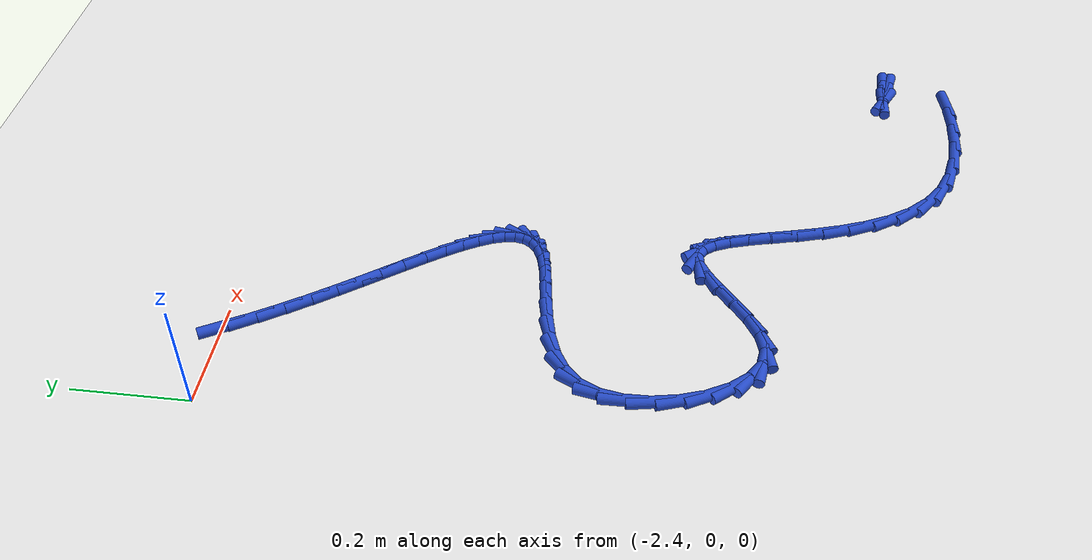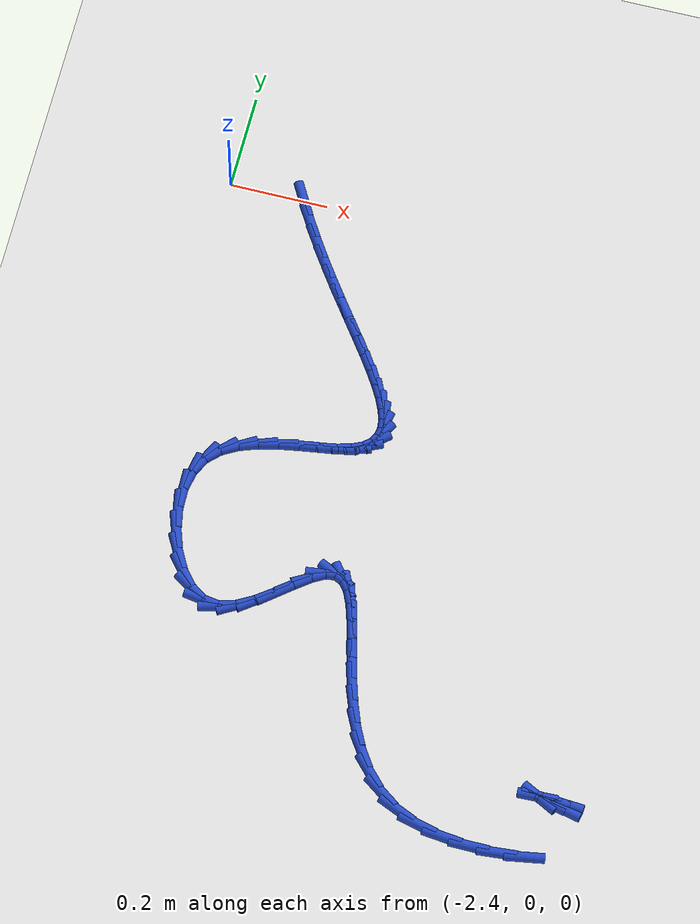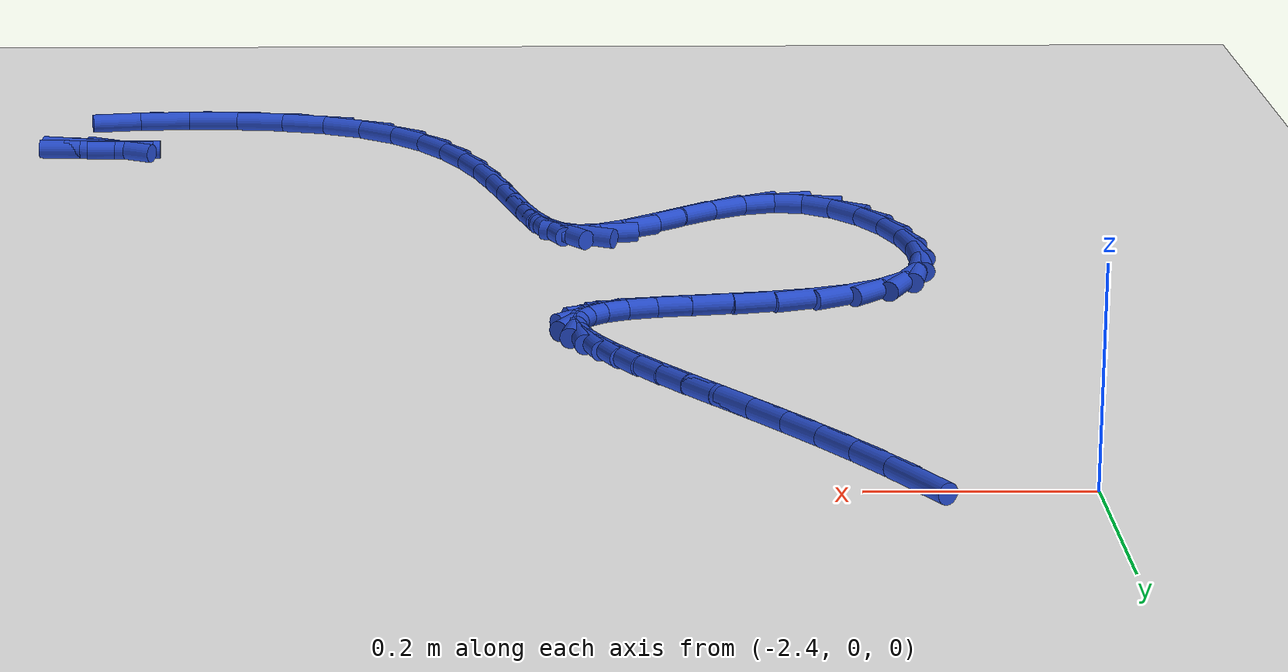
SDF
<sdf version="1.6">
 <world name="default">
  <model name="ground_plane">
   <static>1</static>
   <link name="link">
    <collision name="collision">
     <geometry><plane><normal>0 0 1</normal><size>100 100</size></plane></geometry>
     <surface><friction><ode><mu>100</mu><mu2>50</mu2></ode></friction></surface>
    </collision>
    <visual name="visual">
     <cast_shadows>0</cast_shadows>
     <geometry><plane><normal>0 0 1</normal><size>100 100</size></plane></geometry>
     <material>
      <script><uri>file://media/materials/scripts/gazebo.material</uri><name>Gazebo/WhiteGlow</name></script>
     </material>
    </visual>
   </link>
  </model>
  <model name="line">
   <link name="link_134">
    <pose>-2.248514616710705 -0.0015625688378222147 0.01 0 1.57 -1.0567125782001658</pose>
    <collision name="collision">
     <geometry><cylinder><radius>0.01</radius><length>0.08</length></cylinder></geometry>
    </collision>
    <visual name="visual">
     <material>
      <script><name>Gazebo/Blue</name><uri>file://media/materials/scripts/gazebo.material</uri></script>
     </material>
     <geometry><cylinder><radius>0.01</radius><length>0.08</length></cylinder></geometry>
    </visual>
   </link>
   <link name="link_135">
    <pose>-2.2241787277430705 -0.044655340909345295 0.01 0 1.57 -1.019539368642635</pose>
    <collision name="collision">
     <geometry><cylinder><radius>0.01</radius><length>0.08</length></cylinder></geometry>
    </collision>
    <visual name="visual">
     <material>
      <script><name>Gazebo/Blue</name><uri>file://media/materials/scripts/gazebo.material</uri></script>
     </material>
     <geometry><cylinder><radius>0.01</radius><length>0.08</length></cylinder></geometry>
    </visual>
   </link>
   <link name="link_136">
    <pose>-2.198538710047378 -0.08635754757290538 0.01 0 1.57 -0.9894771255797511</pose>
    <collision name="collision">
     <geometry><cylinder><radius>0.01</radius><length>0.08</length></cylinder></geometry>
    </collision>
    <visual name="visual">
     <material>
      <script><name>Gazebo/Blue</name><uri>file://media/materials/scripts/gazebo.material</uri></script>
     </material>
     <geometry><cylinder><radius>0.01</radius><length>0.08</length></cylinder></geometry>
    </visual>
   </link>
   <link name="link_137">
    <pose>-2.1720975006532335 -0.12659951745585726 0.01 0 1.57 -0.9663210403039078</pose>
    <collision name="collision">
     <geometry><cylinder><radius>0.01</radius><length>0.08</length></cylinder></geometry>
    </collision>
    <visual name="visual">
     <material>
      <script><name>Gazebo/Blue</name><uri>file://media/materials/scripts/gazebo.material</uri></script>
     </material>
     <geometry><cylinder><radius>0.01</radius><length>0.08</length></cylinder></geometry>
    </visual>
   </link>
   <link name="link_138">
    <pose>-2.145358036590244 -0.16531157918555983 0.01 0 1.57 -0.9500854936903999</pose>
    <collision name="collision">
     <geometry><cylinder><radius>0.01</radius><length>0.08</length></cylinder></geometry>
    </collision>
    <visual name="visual">
     <material>
      <script><name>Gazebo/Blue</name><uri>file://media/materials/scripts/gazebo.material</uri></script>
     </material>
     <geometry><cylinder><radius>0.01</radius><length>0.08</length></cylinder></geometry>
    </visual>
   </link>
   <link name="link_139">
    <pose>-2.118823254888016 -0.2024240613893673 0.01 0 1.57 -0.9410730639093469</pose>
    <collision name="collision">
     <geometry><cylinder><radius>0.01</radius><length>0.08</length></cylinder></geometry>
    </collision>
    <visual name="visual">
     <material>
      <script><name>Gazebo/Blue</name><uri>file://media/materials/scripts/gazebo.material</uri></script>
     </material>
     <geometry><cylinder><radius>0.01</radius><length>0.08</length></cylinder></geometry>
    </visual>
   </link>
   <link name="link_140">
    <pose>-2.0929960925761564 -0.23786729269463744 0.01 0 1.57 -0.9399774387839861</pose>
    <collision name="collision">
     <geometry><cylinder><radius>0.01</radius><length>0.08</length></cylinder></geometry>
    </collision>
    <visual name="visual">
     <material>
      <script><name>Gazebo/Blue</name><uri>file://media/materials/scripts/gazebo.material</uri></script>
     </material>
     <geometry><cylinder><radius>0.01</radius><length>0.08</length></cylinder></geometry>
    </visual>
   </link>
   <link name="link_141">
    <pose>-2.0683794866842695 -0.27157160172872774 0.01 0 1.57 -0.9480505577604148</pose>
    <collision name="collision">
     <geometry><cylinder><radius>0.01</radius><length>0.08</length></cylinder></geometry>
    </collision>
    <visual name="visual">
     <material>
      <script><name>Gazebo/Blue</name><uri>file://media/materials/scripts/gazebo.material</uri></script>
     </material>
     <geometry><cylinder><radius>0.01</radius><length>0.08</length></cylinder></geometry>
    </visual>
   </link>
   <link name="link_142">
    <pose>-2.045476374241964 -0.3034673171189928 0.01 0 1.57 -0.9673858947168987</pose>
    <collision name="collision">
     <geometry><cylinder><radius>0.01</radius><length>0.08</length></cylinder></geometry>
    </collision>
    <visual name="visual">
     <material>
      <script><name>Gazebo/Blue</name><uri>file://media/materials/scripts/gazebo.material</uri></script>
     </material>
     <geometry><cylinder><radius>0.01</radius><length>0.08</length></cylinder></geometry>
    </visual>
   </link>
   <link name="link_143">
    <pose>-2.0247896922788446 -0.3334847674927909 0.01 0 1.57 -1.0014117279501613</pose>
    <collision name="collision">
     <geometry><cylinder><radius>0.01</radius><length>0.08</length></cylinder></geometry>
    </collision>
    <visual name="visual">
     <material>
      <script><name>Gazebo/Blue</name><uri>file://media/materials/scripts/gazebo.material</uri></script>
     </material>
     <geometry><cylinder><radius>0.01</radius><length>0.08</length></cylinder></geometry>
    </visual>
   </link>
   <link name="link_144">
    <pose>-2.006822377824519 -0.36155428147747687 0.01 0 1.57 -1.0557628170503466</pose>
    <collision name="collision">
     <geometry><cylinder><radius>0.01</radius><length>0.08</length></cylinder></geometry>
    </collision>
    <visual name="visual">
     <material>
      <script><name>Gazebo/Blue</name><uri>file://media/materials/scripts/gazebo.material</uri></script>
     </material>
     <geometry><cylinder><radius>0.01</radius><length>0.08</length></cylinder></geometry>
    </visual>
   </link>
   <link name="link_145">
    <pose>-1.9920773679085924 -0.3876061877004091 0.01 0 1.57 -1.1397939830899486</pose>
    <collision name="collision">
     <geometry><cylinder><radius>0.01</radius><length>0.08</length></cylinder></geometry>
    </collision>
    <visual name="visual">
     <material>
      <script><name>Gazebo/Blue</name><uri>file://media/materials/scripts/gazebo.material</uri></script>
     </material>
     <geometry><cylinder><radius>0.01</radius><length>0.08</length></cylinder></geometry>
    </visual>
   </link>
   <link name="link_146">
    <pose>-1.9810575995606723 -0.4115708147889422 0.01 0 1.57 -1.2688855130339405</pose>
    <collision name="collision">
     <geometry><cylinder><radius>0.01</radius><length>0.08</length></cylinder></geometry>
    </collision>
    <visual name="visual">
     <material>
      <script><name>Gazebo/Blue</name><uri>file://media/materials/scripts/gazebo.material</uri></script>
     </material>
     <geometry><cylinder><radius>0.01</radius><length>0.08</length></cylinder></geometry>
    </visual>
   </link>
   <link name="link_147">
    <pose>-1.9742660098103644 -0.4333784913704345 0.01 0 1.57 -1.4659542164103483</pose>
    <collision name="collision">
     <geometry><cylinder><radius>0.01</radius><length>0.08</length></cylinder></geometry>
    </collision>
    <visual name="visual">
     <material>
      <script><name>Gazebo/Blue</name><uri>file://media/materials/scripts/gazebo.material</uri></script>
     </material>
     <geometry><cylinder><radius>0.01</radius><length>0.08</length></cylinder></geometry>
    </visual>
   </link>
   <link name="link_148">
    <pose>-1.972205535687275 -0.4529595460722409 0.01 0 1.57 1.3892131779746963</pose>
    <collision name="collision">
     <geometry><cylinder><radius>0.01</radius><length>0.08</length></cylinder></geometry>
    </collision>
    <visual name="visual">
     <material>
      <script><name>Gazebo/Blue</name><uri>file://media/materials/scripts/gazebo.material</uri></script>
     </material>
     <geometry><cylinder><radius>0.01</radius><length>0.08</length></cylinder></geometry>
    </visual>
   </link>
   <link name="link_149">
    <pose>-1.975379114221011 -0.4702443075217195 0.01 0 1.57 1.0323856862845338</pose>
    <collision name="collision">
     <geometry><cylinder><radius>0.01</radius><length>0.08</length></cylinder></geometry>
    </collision>
    <visual name="visual">
     <material>
      <script><name>Gazebo/Blue</name><uri>file://media/materials/scripts/gazebo.material</uri></script>
     </material>
     <geometry><cylinder><radius>0.01</radius><length>0.08</length></cylinder></geometry>
    </visual>
   </link>
   <link name="link_150">
    <pose>-1.9842896824411782 -0.48516310434622534 0.01 0 1.57 0.6891714373673185</pose>
    <collision name="collision">
     <geometry><cylinder><radius>0.01</radius><length>0.08</length></cylinder></geometry>
    </collision>
    <visual name="visual">
     <material>
      <script><name>Gazebo/Blue</name><uri>file://media/materials/scripts/gazebo.material</uri></script>
     </material>
     <geometry><cylinder><radius>0.01</radius><length>0.08</length></cylinder></geometry>
    </visual>
   </link>
   <link name="link_151">
    <pose>-1.999440177377383 -0.4976462651731159 0.01 0 1.57 0.4276236347425826</pose>
    <collision name="collision">
     <geometry><cylinder><radius>0.01</radius><length>0.08</length></cylinder></geometry>
    </collision>
    <visual name="visual">
     <material>
      <script><name>Gazebo/Blue</name><uri>file://media/materials/scripts/gazebo.material</uri></script>
     </material>
     <geometry><cylinder><radius>0.01</radius><length>0.08</length></cylinder></geometry>
    </visual>
   </link>
   <link name="link_152">
    <pose>-2.0213335360592333 -0.507624118629748 0.01 0 1.57 0.2536079970648927</pose>
    <collision name="collision">
     <geometry><cylinder><radius>0.01</radius><length>0.08</length></cylinder></geometry>
    </collision>
    <visual name="visual">
     <material>
      <script><name>Gazebo/Blue</name><uri>file://media/materials/scripts/gazebo.material</uri></script>
     </material>
     <geometry><cylinder><radius>0.01</radius><length>0.08</length></cylinder></geometry>
    </visual>
   </link>
   <link name="link_153">
    <pose>-2.050287747927241 -0.5151287236996018 0.01 0 1.57 0.16937527421216994</pose>
    <collision name="collision">
     <geometry><cylinder><radius>0.01</radius><length>0.08</length></cylinder></geometry>
    </collision>
    <visual name="visual">
     <material>
      <script><name>Gazebo/Blue</name><uri>file://media/materials/scripts/gazebo.material</uri></script>
     </material>
     <geometry><cylinder><radius>0.01</radius><length>0.08</length></cylinder></geometry>
    </visual>
   </link>
   <link name="link_154">
    <pose>-2.085025885135959 -0.521069423056567 0.01 0 1.57 0.14812360153470797</pose>
    <collision name="collision">
     <geometry><cylinder><radius>0.01</radius><length>0.08</length></cylinder></geometry>
    </collision>
    <visual name="visual">
     <material>
      <script><name>Gazebo/Blue</name><uri>file://media/materials/scripts/gazebo.material</uri></script>
     </material>
     <geometry><cylinder><radius>0.01</radius><length>0.08</length></cylinder></geometry>
    </visual>
   </link>
   <link name="link_155">
    <pose>-2.123456043500462 -0.5268038368225098 0.01 0 1.57 0.17046125572489776</pose>
    <collision name="collision">
     <geometry><cylinder><radius>0.01</radius><length>0.08</length></cylinder></geometry>
    </collision>
    <visual name="visual">
     <material>
      <script><name>Gazebo/Blue</name><uri>file://media/materials/scripts/gazebo.material</uri></script>
     </material>
     <geometry><cylinder><radius>0.01</radius><length>0.08</length></cylinder></geometry>
    </visual>
   </link>
   <link name="link_156">
    <pose>-2.1634797673994903 -0.5336931887345436 0.01 0 1.57 0.23365380089577656</pose>
    <collision name="collision">
     <geometry><cylinder><radius>0.01</radius><length>0.08</length></cylinder></geometry>
    </collision>
    <visual name="visual">
     <material>
      <script><name>Gazebo/Blue</name><uri>file://media/materials/scripts/gazebo.material</uri></script>
     </material>
     <geometry><cylinder><radius>0.01</radius><length>0.08</length></cylinder></geometry>
    </visual>
   </link>
   <link name="link_157">
    <pose>-2.202998601211778 -0.5430987025297814 0.01 0 1.57 0.34539546717330427</pose>
    <collision name="collision">
     <geometry><cylinder><radius>0.01</radius><length>0.08</length></cylinder></geometry>
    </collision>
    <visual name="visual">
     <material>
      <script><name>Gazebo/Blue</name><uri>file://media/materials/scripts/gazebo.material</uri></script>
     </material>
     <geometry><cylinder><radius>0.01</radius><length>0.08</length></cylinder></geometry>
    </visual>
   </link>
   <link name="link_158">
    <pose>-2.239914089316068 -0.5563816019453377 0.01 0 1.57 0.5218025250363831</pose>
    <collision name="collision">
     <geometry><cylinder><radius>0.01</radius><length>0.08</length></cylinder></geometry>
    </collision>
    <visual name="visual">
     <material>
      <script><name>Gazebo/Blue</name><uri>file://media/materials/scripts/gazebo.material</uri></script>
     </material>
     <geometry><cylinder><radius>0.01</radius><length>0.08</length></cylinder></geometry>
    </visual>
   </link>
   <link name="link_159">
    <pose>-2.2721277760910943 -0.5749031107183245 0.01 0 1.57 0.7796182875892865</pose>
    <collision name="collision">
     <geometry><cylinder><radius>0.01</radius><length>0.08</length></cylinder></geometry>
    </collision>
    <visual name="visual">
     <material>
      <script><name>Gazebo/Blue</name><uri>file://media/materials/scripts/gazebo.material</uri></script>
     </material>
     <geometry><cylinder><radius>0.01</radius><length>0.08</length></cylinder></geometry>
    </visual>
   </link>
   <link name="link_160">
    <pose>-2.297541205915597 -0.6000244525858554 0.01 0 1.57 1.103806367097789</pose>
    <collision name="collision">
     <geometry><cylinder><radius>0.01</radius><length>0.08</length></cylinder></geometry>
    </collision>
    <visual name="visual">
     <material>
      <script><name>Gazebo/Blue</name><uri>file://media/materials/scripts/gazebo.material</uri></script>
     </material>
     <geometry><cylinder><radius>0.01</radius><length>0.08</length></cylinder></geometry>
    </visual>
   </link>
   <link name="link_161">
    <pose>-2.3141518872285336 -0.6329700638888839 0.01 0 1.57 1.3868467356756191</pose>
    <collision name="collision">
     <geometry><cylinder><radius>0.01</radius><length>0.08</length></cylinder></geometry>
    </collision>
    <visual name="visual">
     <material>
      <script><name>Gazebo/Blue</name><uri>file://media/materials/scripts/gazebo.material</uri></script>
     </material>
     <geometry><cylinder><radius>0.01</radius><length>0.08</length></cylinder></geometry>
    </visual>
   </link>
   <link name="link_162">
    <pose>-2.3215442089694283 -0.6727024377867729 0.01 0 1.57 -1.549298964760823</pose>
    <collision name="collision">
     <geometry><cylinder><radius>0.01</radius><length>0.08</length></cylinder></geometry>
    </collision>
    <visual name="visual">
     <material>
      <script><name>Gazebo/Blue</name><uri>file://media/materials/scripts/gazebo.material</uri></script>
     </material>
     <geometry><cylinder><radius>0.01</radius><length>0.08</length></cylinder></geometry>
    </visual>
   </link>
   <link name="link_163">
    <pose>-2.320606278470118 -0.7163257441895046 0.01 0 1.57 -1.3857560644807116</pose>
    <collision name="collision">
     <geometry><cylinder><radius>0.01</radius><length>0.08</length></cylinder></geometry>
    </collision>
    <visual name="visual">
     <material>
      <script><name>Gazebo/Blue</name><uri>file://media/materials/scripts/gazebo.material</uri></script>
     </material>
     <geometry><cylinder><radius>0.01</radius><length>0.08</length></cylinder></geometry>
    </visual>
   </link>
   <link name="link_164">
    <pose>-2.3122648479889802 -0.760889068438264 0.01 0 1.57 -1.2356961458977977</pose>
    <collision name="collision">
     <geometry><cylinder><radius>0.01</radius><length>0.08</length></cylinder></geometry>
    </collision>
    <visual name="visual">
     <material>
      <script><name>Gazebo/Blue</name><uri>file://media/materials/scripts/gazebo.material</uri></script>
     </material>
     <geometry><cylinder><radius>0.01</radius><length>0.08</length></cylinder></geometry>
    </visual>
   </link>
   <link name="link_165">
    <pose>-2.2974466697843963 -0.8034414958742414 0.01 0 1.57 -1.0742380414158235</pose>
    <collision name="collision">
     <geometry><cylinder><radius>0.01</radius><length>0.08</length></cylinder></geometry>
    </collision>
    <visual name="visual">
     <material>
      <script><name>Gazebo/Blue</name><uri>file://media/materials/scripts/gazebo.material</uri></script>
     </material>
     <geometry><cylinder><radius>0.01</radius><length>0.08</length></cylinder></geometry>
    </visual>
   </link>
   <link name="link_166">
    <pose>-2.2770784961147466 -0.8410321118386225 0.01 0 1.57 -0.8709131242766184</pose>
    <collision name="collision">
     <geometry><cylinder><radius>0.01</radius><length>0.08</length></cylinder></geometry>
    </collision>
    <visual name="visual">
     <material>
      <script><name>Gazebo/Blue</name><uri>file://media/materials/scripts/gazebo.material</uri></script>
     </material>
     <geometry><cylinder><radius>0.01</radius><length>0.08</length></cylinder></geometry>
    </visual>
   </link>
   <link name="link_167">
    <pose>-2.2520870792384087 -0.8707100016725968 0.01 0 1.57 -0.5804592770116315</pose>
    <collision name="collision">
     <geometry><cylinder><radius>0.01</radius><length>0.08</length></cylinder></geometry>
    </collision>
    <visual name="visual">
     <material>
      <script><name>Gazebo/Blue</name><uri>file://media/materials/scripts/gazebo.material</uri></script>
     </material>
     <geometry><cylinder><radius>0.01</radius><length>0.08</length></cylinder></geometry>
    </visual>
   </link>
   <link name="link_168">
    <pose>-2.223399171413764 -0.8895242507173508 0.01 0 1.57 -0.15856803402685657</pose>
    <collision name="collision">
     <geometry><cylinder><radius>0.01</radius><length>0.08</length></cylinder></geometry>
    </collision>
    <visual name="visual">
     <material>
      <script><name>Gazebo/Blue</name><uri>file://media/materials/scripts/gazebo.material</uri></script>
     </material>
     <geometry><cylinder><radius>0.01</radius><length>0.08</length></cylinder></geometry>
    </visual>
   </link>
   <link name="link_169">
    <pose>-2.191942282667306 -0.8945545387850233 0.01 0 1.57 0.26779278558488934</pose>
    <collision name="collision">
     <geometry><cylinder><radius>0.01</radius><length>0.08</length></cylinder></geometry>
    </collision>
    <visual name="visual">
     <material>
      <script><name>Gazebo/Blue</name><uri>file://media/materials/scripts/gazebo.material</uri></script>
     </material>
     <geometry><cylinder><radius>0.01</radius><length>0.08</length></cylinder></geometry>
    </visual>
   </link>
   <link name="link_170">
    <pose>-2.1587072017000413 -0.8854353873751339 0.01 0 1.57 0.5150241635306143</pose>
    <collision name="collision">
     <geometry><cylinder><radius>0.01</radius><length>0.08</length></cylinder></geometry>
    </collision>
    <visual name="visual">
     <material>
      <script><name>Gazebo/Blue</name><uri>file://media/materials/scripts/gazebo.material</uri></script>
     </material>
     <geometry><cylinder><radius>0.01</radius><length>0.08</length></cylinder></geometry>
    </visual>
   </link>
   <link name="link_171">
    <pose>-2.124794699942409 -0.8662418102103258 0.01 0 1.57 0.6365861083162205</pose>
    <collision name="collision">
     <geometry><cylinder><radius>0.01</radius><length>0.08</length></cylinder></geometry>
    </collision>
    <visual name="visual">
     <material>
      <script><name>Gazebo/Blue</name><uri>file://media/materials/scripts/gazebo.material</uri></script>
     </material>
     <geometry><cylinder><radius>0.01</radius><length>0.08</length></cylinder></geometry>
    </visual>
   </link>
   <link name="link_172">
    <pose>-2.091316551784423 -0.8414930594556369 0.01 0 1.57 0.6792891822831562</pose>
    <collision name="collision">
     <geometry><cylinder><radius>0.01</radius><length>0.08</length></cylinder></geometry>
    </collision>
    <visual name="visual">
     <material>
      <script><name>Gazebo/Blue</name><uri>file://media/materials/scripts/gazebo.material</uri></script>
     </material>
     <geometry><cylinder><radius>0.01</radius><length>0.08</length></cylinder></geometry>
    </visual>
   </link>
   <link name="link_173">
    <pose>-2.0593845316160997 -0.8157083872761078 0.01 0 1.57 0.6510173187036401</pose>
    <collision name="collision">
     <geometry><cylinder><radius>0.01</radius><length>0.08</length></cylinder></geometry>
    </collision>
    <visual name="visual">
     <material>
      <script><name>Gazebo/Blue</name><uri>file://media/materials/scripts/gazebo.material</uri></script>
     </material>
     <geometry><cylinder><radius>0.01</radius><length>0.08</length></cylinder></geometry>
    </visual>
   </link>
   <link name="link_174">
    <pose>-2.030110413827449 -0.7934070458367758 0.01 0 1.57 0.510973869948079</pose>
    <collision name="collision">
     <geometry><cylinder><radius>0.01</radius><length>0.08</length></cylinder></geometry>
    </collision>
    <visual name="visual">
     <material>
      <script><name>Gazebo/Blue</name><uri>file://media/materials/scripts/gazebo.material</uri></script>
     </material>
     <geometry><cylinder><radius>0.01</radius><length>0.08</length></cylinder></geometry>
    </visual>
   </link>
   <link name="link_175">
    <pose>-2.004605972808488 -0.7791082873026813 0.01 0 1.57 0.13101453095685123</pose>
    <collision name="collision">
     <geometry><cylinder><radius>0.01</radius><length>0.08</length></cylinder></geometry>
    </collision>
    <visual name="visual">
     <material>
      <script><name>Gazebo/Blue</name><uri>file://media/materials/scripts/gazebo.material</uri></script>
     </material>
     <geometry><cylinder><radius>0.01</radius><length>0.08</length></cylinder></geometry>
    </visual>
   </link>
   <link name="link_176">
    <pose>-1.9836534900198686 -0.7763473927506057 0.01 0 1.57 -0.4565204852414654</pose>
    <collision name="collision">
     <geometry><cylinder><radius>0.01</radius><length>0.08</length></cylinder></geometry>
    </collision>
    <visual name="visual">
     <material>
      <script><name>Gazebo/Blue</name><uri>file://media/materials/scripts/gazebo.material</uri></script>
     </material>
     <geometry><cylinder><radius>0.01</radius><length>0.08</length></cylinder></geometry>
    </visual>
   </link>
   <link name="link_177">
    <pose>-1.9667004212538748 -0.7846734276256563 0.01 0 1.57 -0.913898749266504</pose>
    <collision name="collision">
     <geometry><cylinder><radius>0.01</radius><length>0.08</length></cylinder></geometry>
    </collision>
    <visual name="visual">
     <material>
      <script><name>Gazebo/Blue</name><uri>file://media/materials/scripts/gazebo.material</uri></script>
     </material>
     <geometry><cylinder><radius>0.01</radius><length>0.08</length></cylinder></geometry>
    </visual>
   </link>
   <link name="link_178">
    <pose>-1.9528562486566157 -0.802626160156544 0.01 0 1.57 -1.1520202619252604</pose>
    <collision name="collision">
     <geometry><cylinder><radius>0.01</radius><length>0.08</length></cylinder></geometry>
    </collision>
    <visual name="visual">
     <material>
      <script><name>Gazebo/Blue</name><uri>file://media/materials/scripts/gazebo.material</uri></script>
     </material>
     <geometry><cylinder><radius>0.01</radius><length>0.08</length></cylinder></geometry>
    </visual>
   </link>
   <link name="link_179">
    <pose>-1.941230454348846 -0.8287453584962537 0.01 0 1.57 -1.2668020698687288</pose>
    <collision name="collision">
     <geometry><cylinder><radius>0.01</radius><length>0.08</length></cylinder></geometry>
    </collision>
    <visual name="visual">
     <material>
      <script><name>Gazebo/Blue</name><uri>file://media/materials/scripts/gazebo.material</uri></script>
     </material>
     <geometry><cylinder><radius>0.01</radius><length>0.08</length></cylinder></geometry>
    </visual>
   </link>
   <link name="link_180">
    <pose>-1.9309325204513184 -0.8615707907977744 0.01 0 1.57 -1.3173629648029106</pose>
    <collision name="collision">
     <geometry><cylinder><radius>0.01</radius><length>0.08</length></cylinder></geometry>
    </collision>
    <visual name="visual">
     <material>
      <script><name>Gazebo/Blue</name><uri>file://media/materials/scripts/gazebo.material</uri></script>
     </material>
     <geometry><cylinder><radius>0.01</radius><length>0.08</length></cylinder></geometry>
    </visual>
   </link>
   <link name="link_181">
    <pose>-1.9210719290847882 -0.8996422252140902 0.01 0 1.57 -1.3292053465915694</pose>
    <collision name="collision">
     <geometry><cylinder><radius>0.01</radius><length>0.08</length></cylinder></geometry>
    </collision>
    <visual name="visual">
     <material>
      <script><name>Gazebo/Blue</name><uri>file://media/materials/scripts/gazebo.material</uri></script>
     </material>
     <geometry><cylinder><radius>0.01</radius><length>0.08</length></cylinder></geometry>
    </visual>
   </link>
   <link name="link_182">
    <pose>-1.910758162370008 -0.941499429898188 0.01 0 1.57 -1.312828760824326</pose>
    <collision name="collision">
     <geometry><cylinder><radius>0.01</radius><length>0.08</length></cylinder></geometry>
    </collision>
    <visual name="visual">
     <material>
      <script><name>Gazebo/Blue</name><uri>file://media/materials/scripts/gazebo.material</uri></script>
     </material>
     <geometry><cylinder><radius>0.01</radius><length>0.08</length></cylinder></geometry>
    </visual>
   </link>
   <link name="link_183">
    <pose>-1.8991007024277322 -0.9856821730030565 0.01 0 1.57 -1.2716742974649735</pose>
    <collision name="collision">
     <geometry><cylinder><radius>0.01</radius><length>0.08</length></cylinder></geometry>
    </collision>
    <visual name="visual">
     <material>
      <script><name>Gazebo/Blue</name><uri>file://media/materials/scripts/gazebo.material</uri></script>
     </material>
     <geometry><cylinder><radius>0.01</radius><length>0.08</length></cylinder></geometry>
    </visual>
   </link>
   <link name="link_184">
    <pose>-1.885209031378714 -1.0307302226816788 0.01 0 1.57 -1.2052099200589403</pose>
    <collision name="collision">
     <geometry><cylinder><radius>0.01</radius><length>0.08</length></cylinder></geometry>
    </collision>
    <visual name="visual">
     <material>
      <script><name>Gazebo/Blue</name><uri>file://media/materials/scripts/gazebo.material</uri></script>
     </material>
     <geometry><cylinder><radius>0.01</radius><length>0.08</length></cylinder></geometry>
    </visual>
   </link>
   <link name="link_185">
    <pose>-1.8681926313437072 -1.0751833470870442 0.01 0 1.57 -1.1103111482708512</pose>
    <collision name="collision">
     <geometry><cylinder><radius>0.01</radius><length>0.08</length></cylinder></geometry>
    </collision>
    <visual name="visual">
     <material>
      <script><name>Gazebo/Blue</name><uri>file://media/materials/scripts/gazebo.material</uri></script>
     </material>
     <geometry><cylinder><radius>0.01</radius><length>0.08</length></cylinder></geometry>
    </visual>
   </link>
   <link name="link_186">
    <pose>-1.8471609844434662 -1.117581314372137 0.01 0 1.57 -0.9825143642237264</pose>
    <collision name="collision">
     <geometry><cylinder><radius>0.01</radius><length>0.08</length></cylinder></geometry>
    </collision>
    <visual name="visual">
     <material>
      <script><name>Gazebo/Blue</name><uri>file://media/materials/scripts/gazebo.material</uri></script>
     </material>
     <geometry><cylinder><radius>0.01</radius><length>0.08</length></cylinder></geometry>
    </visual>
   </link>
   <link name="link_187">
    <pose>-1.8212235727987438 -1.1564638926899453 0.01 0 1.57 -0.8184945694785536</pose>
    <collision name="collision">
     <geometry><cylinder><radius>0.01</radius><length>0.08</length></cylinder></geometry>
    </collision>
    <visual name="visual">
     <material>
      <script><name>Gazebo/Blue</name><uri>file://media/materials/scripts/gazebo.material</uri></script>
     </material>
     <geometry><cylinder><radius>0.01</radius><length>0.08</length></cylinder></geometry>
    </visual>
   </link>
   <link name="link_188">
    <pose>-1.789489878530295 -1.1903708501934538 0.01 0 1.57 -0.6207300680890656</pose>
    <collision name="collision">
     <geometry><cylinder><radius>0.01</radius><length>0.08</length></cylinder></geometry>
    </collision>
    <visual name="visual">
     <material>
      <script><name>Gazebo/Blue</name><uri>file://media/materials/scripts/gazebo.material</uri></script>
     </material>
     <geometry><cylinder><radius>0.01</radius><length>0.08</length></cylinder></geometry>
    </visual>
   </link>
   <link name="link_189">
    <pose>-1.751069383758872 -1.2178419550356507 0.01 0 1.57 -0.4095346229387299</pose>
    <collision name="collision">
     <geometry><cylinder><radius>0.01</radius><length>0.08</length></cylinder></geometry>
    </collision>
    <visual name="visual">
     <material>
      <script><name>Gazebo/Blue</name><uri>file://media/materials/scripts/gazebo.material</uri></script>
     </material>
     <geometry><cylinder><radius>0.01</radius><length>0.08</length></cylinder></geometry>
    </visual>
   </link>
   <link name="link_190">
    <pose>-1.7054172296601586 -1.237658552045606 0.01 0 1.57 -0.23820945885003186</pose>
    <collision name="collision">
     <geometry><cylinder><radius>0.01</radius><length>0.08</length></cylinder></geometry>
    </collision>
    <visual name="visual">
     <material>
      <script><name>Gazebo/Blue</name><uri>file://media/materials/scripts/gazebo.material</uri></script>
     </material>
     <geometry><cylinder><radius>0.01</radius><length>0.08</length></cylinder></geometry>
    </visual>
   </link>
   <link name="link_191">
    <pose>-1.654144327337361 -1.2501086259800045 0.01 0 1.57 -0.10886057012378561</pose>
    <collision name="collision">
     <geometry><cylinder><radius>0.01</radius><length>0.08</length></cylinder></geometry>
    </collision>
    <visual name="visual">
     <material>
      <script><name>Gazebo/Blue</name><uri>file://media/materials/scripts/gazebo.material</uri></script>
     </material>
     <geometry><cylinder><radius>0.01</radius><length>0.08</length></cylinder></geometry>
    </visual>
   </link>
   <link name="link_192">
    <pose>-1.5996911816746437 -1.2560599540391122 0.01 0 1.57 -0.005826479002367501</pose>
    <collision name="collision">
     <geometry><cylinder><radius>0.01</radius><length>0.08</length></cylinder></geometry>
    </collision>
    <visual name="visual">
     <material>
      <script><name>Gazebo/Blue</name><uri>file://media/materials/scripts/gazebo.material</uri></script>
     </material>
     <geometry><cylinder><radius>0.01</radius><length>0.08</length></cylinder></geometry>
    </visual>
   </link>
   <link name="link_193">
    <pose>-1.544500035049471 -1.2563815277349613 0.01 0 1.57 0.08280602942234616</pose>
    <collision name="collision">
     <geometry><cylinder><radius>0.01</radius><length>0.08</length></cylinder></geometry>
    </collision>
    <visual name="visual">
     <material>
      <script><name>Gazebo/Blue</name><uri>file://media/materials/scripts/gazebo.material</uri></script>
     </material>
     <geometry><cylinder><radius>0.01</radius><length>0.08</length></cylinder></geometry>
    </visual>
   </link>
   <link name="link_194">
    <pose>-1.4910131298393074 -1.2519423385795834 0.01 0 1.57 0.16726890340687828</pose>
    <collision name="collision">
     <geometry><cylinder><radius>0.01</radius><length>0.08</length></cylinder></geometry>
    </collision>
    <visual name="visual">
     <material>
      <script><name>Gazebo/Blue</name><uri>file://media/materials/scripts/gazebo.material</uri></script>
     </material>
     <geometry><cylinder><radius>0.01</radius><length>0.08</length></cylinder></geometry>
    </visual>
   </link>
   <link name="link_203">
    <pose>-1.4442297867206826 -1.1394357090554177 0.01 0 1.57 -0.22376552468647662</pose>
    <collision name="collision">
     <geometry><cylinder><radius>0.01</radius><length>0.08</length></cylinder></geometry>
    </collision>
    <visual name="visual">
     <material>
      <script><name>Gazebo/Blue</name><uri>file://media/materials/scripts/gazebo.material</uri></script>
     </material>
     <geometry><cylinder><radius>0.01</radius><length>0.08</length></cylinder></geometry>
    </visual>
   </link>
   <link name="link_204">
    <pose>-1.4742621670916005 -1.1326010422053598 0.01 0 1.57 -0.24950880547471835</pose>
    <collision name="collision">
     <geometry><cylinder><radius>0.01</radius><length>0.08</length></cylinder></geometry>
    </collision>
    <visual name="visual">
     <material>
      <script><name>Gazebo/Blue</name><uri>file://media/materials/scripts/gazebo.material</uri></script>
     </material>
     <geometry><cylinder><radius>0.01</radius><length>0.08</length></cylinder></geometry>
    </visual>
   </link>
   <link name="link_205">
    <pose>-1.4908203573007714 -1.1283817045985807 0.01 0 1.57 -0.47546507251197384</pose>
    <collision name="collision">
     <geometry><cylinder><radius>0.01</radius><length>0.08</length></cylinder></geometry>
    </collision>
    <visual name="visual">
     <material>
      <script><name>Gazebo/Blue</name><uri>file://media/materials/scripts/gazebo.material</uri></script>
     </material>
     <geometry><cylinder><radius>0.01</radius><length>0.08</length></cylinder></geometry>
    </visual>
   </link>
   <link name="link_206">
    <pose>-1.4947487564429562 -1.1263591277322742 0.01 0 1.57 0.035698346882643235</pose>
    <collision name="collision">
     <geometry><cylinder><radius>0.01</radius><length>0.08</length></cylinder></geometry>
    </collision>
    <visual name="visual">
     <material>
      <script><name>Gazebo/Blue</name><uri>file://media/materials/scripts/gazebo.material</uri></script>
     </material>
     <geometry><cylinder><radius>0.01</radius><length>0.08</length></cylinder></geometry>
    </visual>
   </link>
   <link name="link_207">
    <pose>-1.4872194444383968 -1.1260902295053878 0.01 0 1.57 -0.05840678217345415</pose>
    <collision name="collision">
     <geometry><cylinder><radius>0.01</radius><length>0.08</length></cylinder></geometry>
    </collision>
    <visual name="visual">
     <material>
      <script><name>Gazebo/Blue</name><uri>file://media/materials/scripts/gazebo.material</uri></script>
     </material>
     <geometry><cylinder><radius>0.01</radius><length>0.08</length></cylinder></geometry>
    </visual>
   </link>
   <link name="link_208">
    <pose>-1.4694045012073376 -1.1271319278168719 0.01 0 1.57 -0.0707809096217464</pose>
    <collision name="collision">
     <geometry><cylinder><radius>0.01</radius><length>0.08</length></cylinder></geometry>
    </collision>
    <visual name="visual">
     <material>
      <script><name>Gazebo/Blue</name><uri>file://media/materials/scripts/gazebo.material</uri></script>
     </material>
     <geometry><cylinder><radius>0.01</radius><length>0.08</length></cylinder></geometry>
    </visual>
   </link>
   <link name="link_209">
    <pose>-1.4424760066700193 -1.129041140565673 0.01 0 1.57 -0.06682456779993415</pose>
    <collision name="collision">
     <geometry><cylinder><radius>0.01</radius><length>0.08</length></cylinder></geometry>
    </collision>
    <visual name="visual">
     <material>
      <script><name>Gazebo/Blue</name><uri>file://media/materials/scripts/gazebo.material</uri></script>
     </material>
     <geometry><cylinder><radius>0.01</radius><length>0.08</length></cylinder></geometry>
    </visual>
   </link>
  </model>
 </world>
</sdf>
